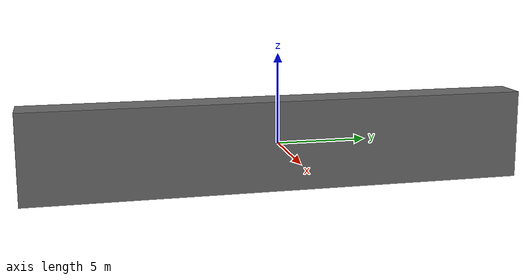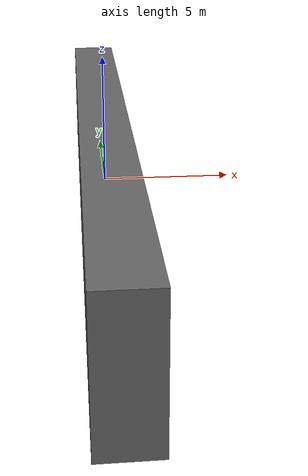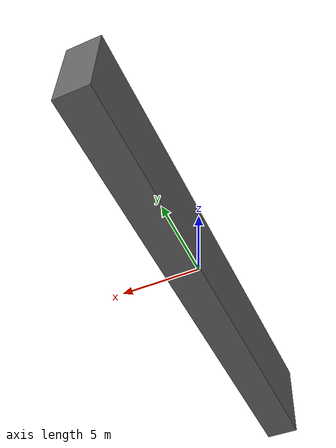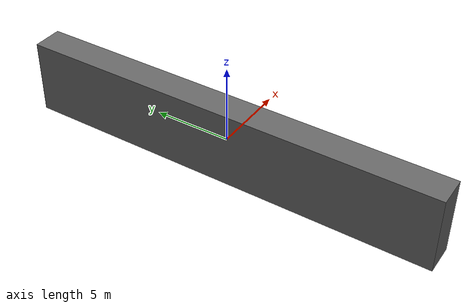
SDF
<sdf version="1.9">
    <model name='map_wall'>
        <static>true</static>
        <pose>0 0 0 0 0 0</pose><!--pose
            relative to the world-->
        <link name='map_wall'>
            <visual name='visual'>
                <geometry>
                    <box>
                        <size>2 28 5</size>
                    </box>
                </geometry>
                <!--let's
                    add color to our link-->
                <material>
                    <ambient>0.4 0.4 0.4 1</ambient>
                    <diffuse>0.4 0.4 0.4 1</diffuse>
                    <specular>0.4 0.4 0.4 1</specular>
                </material>
            </visual>
            <collision name='collision'>
                <geometry>
                    <box>
                        <size>2 28 5</size>
                    </box>
                </geometry>
                <surface>
                    <contact>
                        <collide_bitmask>0x01</collide_bitmask>
                    </contact>
                    <friction>
                        <ode>
                            <mu>1.0</mu>
                            <mu2>1.0</mu2>
                        </ode>
                    </friction>
                </surface>
            </collision>
        </link>
    </model>
</sdf>
